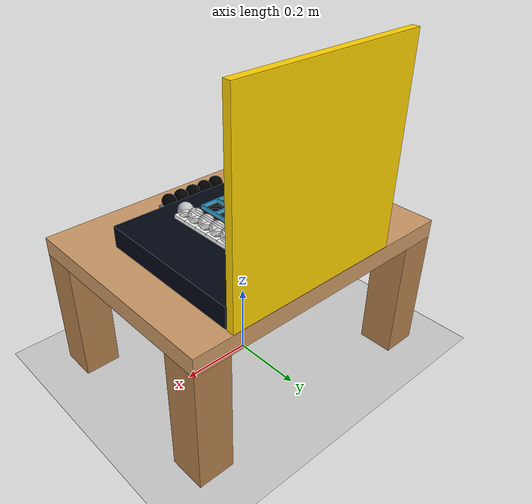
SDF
<sdf version="1.10">
 <world name="WORKINGPROTO">
  <physics name="1ms" type="ignored">
   <max_step_size>0.001</max_step_size>
   <real_time_factor>1</real_time_factor>
   <real_time_update_rate>1000</real_time_update_rate>
  </physics>
  <plugin name="gz::sim::systems::Physics" filename="gz-sim-physics-system"/>
  <plugin name="gz::sim::systems::UserCommands" filename="gz-sim-user-commands-system"/>
  <plugin name="gz::sim::systems::SceneBroadcaster" filename="gz-sim-scene-broadcaster-system"/>
  <gravity>0 0 -9.8000000000000007</gravity>
  <magnetic_field>5.5644999999999998e-06 2.2875799999999999e-05 -4.2388400000000002e-05</magnetic_field>
  <atmosphere type="adiabatic"/>
  <scene>
   <ambient>0.400000006 0.400000006 0.400000006 1</ambient>
   <background>0.699999988 0.699999988 0.699999988 1</background>
   <shadows>true</shadows>
  </scene>
  <model name="ground_plane">
   <static>true</static>
   <link name="link">
    <collision name="collision">
     <geometry><plane><normal>0 0 1</normal><size>100 100</size></plane></geometry>
     <surface>
      <contact><collide_bitmask>65535</collide_bitmask><ode><mu>100</mu><mu2>50</mu2></ode></contact>
      <friction><ode><mu>100</mu><mu2>50</mu2></ode></friction>
     </surface>
    </collision>
    <visual name="visual">
     <cast_shadows>false</cast_shadows>
     <geometry><plane><normal>0 0 1</normal><size>100 100</size></plane></geometry>
     <material>
      <ambient>0.800000012 0.800000012 0.800000012 1</ambient>
      <diffuse>0.800000012 0.800000012 0.800000012 1</diffuse>
      <specular>0 0 0 1</specular>
     </material>
    </visual>
    <inertial>
     <mass>1</mass>
     <inertia><ixx>1</ixx><ixy>0</ixy><ixz>0</ixz><iyy>1</iyy><iyz>0</iyz><izz>1</izz></inertia>
    </inertial>
   </link>
  </model>
  <model name="study_table">
   <static>true</static>
   <link name="table_link">
    <inertial>
     <mass>50</mass>
     <inertia><ixx>10</ixx><iyy>8</iyy><izz>6</izz><ixy>0</ixy><ixz>0</ixz><iyz>0</iyz></inertia>
    </inertial>
    <visual name="table_top">
     <pose>0 0 0.375 0 0 0</pose>
     <geometry><box><size>0.80000000000000004 0.59999999999999998 0.050000000000000003</size></box></geometry>
     <material>
      <ambient>0.800000012 0.600000024 0.400000006 1</ambient>
      <diffuse>0.800000012 0.600000024 0.400000006 1</diffuse>
     </material>
    </visual>
    <visual name="table_leg1">
     <pose>0.34999999999999998 0.25 0.17499999999999999 0 0 0</pose>
     <geometry><box><size>0.10000000000000001 0.10000000000000001 0.34999999999999998</size></box></geometry>
     <material>
      <ambient>0.699999988 0.5 0.300000012 1</ambient>
      <diffuse>0.699999988 0.5 0.300000012 1</diffuse>
     </material>
    </visual>
    <visual name="table_leg2">
     <pose>-0.34999999999999998 0.25 0.17499999999999999 0 0 0</pose>
     <geometry><box><size>0.10000000000000001 0.10000000000000001 0.34999999999999998</size></box></geometry>
     <material>
      <ambient>0.699999988 0.5 0.300000012 1</ambient>
      <diffuse>0.699999988 0.5 0.300000012 1</diffuse>
     </material>
    </visual>
    <visual name="table_leg3">
     <pose>0.34999999999999998 -0.25 0.17499999999999999 0 0 0</pose>
     <geometry><box><size>0.10000000000000001 0.10000000000000001 0.34999999999999998</size></box></geometry>
     <material>
      <ambient>0.699999988 0.5 0.300000012 1</ambient>
      <diffuse>0.699999988 0.5 0.300000012 1</diffuse>
     </material>
    </visual>
    <visual name="table_leg4">
     <pose>-0.34999999999999998 -0.25 0.17499999999999999 0 0 0</pose>
     <geometry><box><size>0.10000000000000001 0.10000000000000001 0.34999999999999998</size></box></geometry>
     <material>
      <ambient>0.699999988 0.5 0.300000012 1</ambient>
      <diffuse>0.699999988 0.5 0.300000012 1</diffuse>
     </material>
    </visual>
    <collision name="table_collision">
     <pose>0 0 0.375 0 0 0</pose>
     <geometry><box><size>0.80000000000000004 0.59999999999999998 0.050000000000000003</size></box></geometry>
    </collision>
   </link>
  </model>
  <model name="guard_rail">
   <static>true</static>
   <pose>-0.08814220130443573 -0.083396650850772858 0.43519699573516846 0 0 0</pose>
   <link name="rail_link">
    <inertial>
     <mass>10</mass>
     <inertia><ixx>1</ixx><iyy>1</iyy><izz>1</izz><ixy>0</ixy><ixz>0</ixz><iyz>0</iyz></inertia>
    </inertial>
    <visual name="rail_visual">
     <geometry>
      <mesh>
       <scale>0.001 0.001 0.001</scale>
       <uri>file:///home/sukritchopra/ros2_ws/src/jetrover_description/models/jetrover/meshes_1/EXTERNAL_MESHES/GUARD_RAILS6.stl</uri>
      </mesh>
     </geometry>
     <material>
      <ambient>0.235294119 0.70588237 0.90196079 1</ambient>
      <diffuse>0.235294119 0.70588237 0.90196079 1</diffuse>
     </material>
    </visual>
    <collision name="rail_collision">
     <geometry>
      <mesh>
       <scale>0.001 0.001 0.001</scale>
       <uri>file:///home/sukritchopra/ros2_ws/src/jetrover_description/models/jetrover/meshes_1/EXTERNAL_MESHES/GUARD_RAILS6.stl</uri>
      </mesh>
     </geometry>
    </collision>
   </link>
  </model>
  <model name="wall">
   <static>true</static>
   <pose>0.044432800263166428 0.2894740104675293 0.81117349863052368 0 0 0</pose>
   <link name="wall_link">
    <inertial>
     <mass>20000000</mass>
     <inertia>
      <ixx>1.6699999999999999</ixx>
      <iyy>2.6699999999999999</iyy>
      <izz>1.0700000000000001</izz>
      <ixy>0</ixy>
      <ixz>0</ixz>
      <iyz>0</iyz>
     </inertia>
    </inertial>
    <visual name="wall_base">
     <pose>0 0 -0.14999999999999999 0 0 0</pose>
     <geometry><box><size>0.49999999999999978 0.020000000000000004 0.5199999999999998</size></box></geometry>
     <material><ambient>1 0.824000001 0 1</ambient><diffuse>1 0.824000001 0 1</diffuse></material>
    </visual>
    <collision name="wall_base_collision">
     <pose>0 0 -0.14999999999999999 0 0 0</pose>
     <geometry><box><size>0.49999999999999978 0.020000000000000004 0.5199999999999998</size></box></geometry>
    </collision>
   </link>
  </model>
  <model name="enclosure_floor">
   <static>true</static>
   <pose>0.19129636883735654 0.064957223832607283 0.42550611495971669 1.5700000129604901 -7.7423206226386561e-06 1.5605700097926098</pose>
   <link name="enclosure_floor_link">
    <inertial>
     <mass>20000000</mass>
     <inertia>
      <ixx>1.6699999999999999</ixx>
      <iyy>2.6699999999999999</iyy>
      <izz>1.0700000000000001</izz>
      <ixy>0</ixy>
      <ixz>0</ixz>
      <iyz>0</iyz>
     </inertia>
    </inertial>
    <visual name="enclosure_floor_base">
     <pose>0 0 -0.14999999999999999 0 0 0</pose>
     <geometry><box><size>0.41999999999999998 0.065000000000000002 0.5</size></box></geometry>
     <material>
      <ambient>0 0.00400000019 0.0149999997 1</ambient>
      <diffuse>0.00400000019 0.0199999996 0.0700000003 1</diffuse>
     </material>
    </visual>
    <collision name="enclosure_floor_base_collision">
     <pose>0 0 -0.14999999999999999 0 0 0</pose>
     <geometry><box><size>0.41999999999999998 0.065000000000000002 0.5</size></box></geometry>
    </collision>
   </link>
  </model>
  <model name="tictactoe_game">
   <static>true</static>
   <pose>-0.078679516911506653 -0.071379296481609344 0.44987401366233826 8.8383398999775122e-08 9.0853602388062954e-07 -0.0004004650162100489</pose>
   <link name="board">
    <inertial>
     <mass>2</mass>
     <inertia>
      <ixx>0.10000000000000001</ixx>
      <iyy>0.10000000000000001</iyy>
      <izz>0.10000000000000001</izz>
      <ixy>0</ixy>
      <ixz>0</ixz>
      <iyz>0</iyz>
     </inertia>
    </inertial>
    <visual name="board_visual">
     <geometry>
      <mesh>
       <scale>0.001 0.001 0.001</scale>
       <uri>file:///home/sukritchopra/ros2_ws/src/jetrover_description/models/jetrover/meshes_1/EXTERNAL_MESHES/tictactoe_board3.stl</uri>
      </mesh>
     </geometry>
     <material>
      <ambient>0.0500000007 0.0500000007 0.0500000007 1</ambient>
      <diffuse>0.0500000007 0.0500000007 0.0500000007 1</diffuse>
     </material>
    </visual>
    <collision name="board_collision">
     <geometry>
      <mesh>
       <scale>0.001 0.001 0.001</scale>
       <uri>file:///home/sukritchopra/ros2_ws/src/jetrover_description/models/jetrover/meshes_1/EXTERNAL_MESHES/tictactoe_board3.stl</uri>
      </mesh>
     </geometry>
    </collision>
   </link>
  </model>
  <model name="o_piece_1">
   <static>false</static>
   <pose>0.085922427286968403 -0.19898903581762434 0.43195286992174503 -1.8337843268030118 0.35810408195431553 0.79344096331594527</pose>
   <link name="o_link">
    <inertial>
     <mass>0.0027000000000000001</mass>
     <inertia>
      <ixx>1.0000000000000001e-05</ixx>
      <iyy>1.0000000000000001e-05</iyy>
      <izz>1.0000000000000001e-05</izz>
      <ixy>0</ixy>
      <ixz>0</ixz>
      <iyz>0</iyz>
     </inertia>
    </inertial>
    <visual name="o_visual">
     <geometry><sphere><radius>0.02</radius></sphere></geometry>
     <material><ambient>0 0 0 1</ambient><diffuse>0 0 0 1</diffuse></material>
    </visual>
    <collision name="o_collision"><geometry><sphere><radius>0.02</radius></sphere></geometry></collision>
   </link>
  </model>
  <model name="o_piece_2">
   <static>false</static>
   <pose>0.005923516400853185 -0.19857281593479062 0.43195285446754733 -1.1565946605721613 1.5254311978203543 1.0062701691461311</pose>
   <link name="o_link">
    <inertial>
     <mass>0.0027000000000000001</mass>
     <inertia>
      <ixx>1.0000000000000001e-05</ixx>
      <iyy>1.0000000000000001e-05</iyy>
      <izz>1.0000000000000001e-05</izz>
      <ixy>0</ixy>
      <ixz>0</ixz>
      <iyz>0</iyz>
     </inertia>
    </inertial>
    <visual name="o_visual">
     <geometry><sphere><radius>0.02</radius></sphere></geometry>
     <material><ambient>0 0 0 1</ambient><diffuse>0 0 0 1</diffuse></material>
    </visual>
    <collision name="o_collision"><geometry><sphere><radius>0.02</radius></sphere></geometry></collision>
   </link>
  </model>
  <model name="o_piece_3">
   <static>false</static>
   <pose>-0.074075405402659875 -0.19815660350751288 0.43195285607682621 -1.0420045667514066 -0.14606115901628433 3.0441487576330934</pose>
   <link name="o_link">
    <inertial>
     <mass>0.0027000000000000001</mass>
     <inertia>
      <ixx>1.0000000000000001e-05</ixx>
      <iyy>1.0000000000000001e-05</iyy>
      <izz>1.0000000000000001e-05</izz>
      <ixy>0</ixy>
      <ixz>0</ixz>
      <iyz>0</iyz>
     </inertia>
    </inertial>
    <visual name="o_visual">
     <geometry><sphere><radius>0.02</radius></sphere></geometry>
     <material><ambient>0 0 0 1</ambient><diffuse>0 0 0 1</diffuse></material>
    </visual>
    <collision name="o_collision"><geometry><sphere><radius>0.02</radius></sphere></geometry></collision>
   </link>
  </model>
  <model name="o_piece_4">
   <static>false</static>
   <pose>0.045922969769135014 -0.1987809285597926 0.43195286984880421 2.4437912362530279 0.013397183306945542 2.2860722619589939</pose>
   <link name="o_link">
    <inertial>
     <mass>0.0027000000000000001</mass>
     <inertia>
      <ixx>1.0000000000000001e-05</ixx>
      <iyy>1.0000000000000001e-05</iyy>
      <izz>1.0000000000000001e-05</izz>
      <ixy>0</ixy>
      <ixz>0</ixz>
      <iyz>0</iyz>
     </inertia>
    </inertial>
    <visual name="o_visual">
     <geometry><sphere><radius>0.02</radius></sphere></geometry>
     <material><ambient>0 0 0 1</ambient><diffuse>0 0 0 1</diffuse></material>
    </visual>
    <collision name="o_collision"><geometry><sphere><radius>0.02</radius></sphere></geometry></collision>
   </link>
  </model>
  <model name="o_piece_5">
   <static>false</static>
   <pose>-0.034075879781253066 -0.19836465989416874 0.43195287136689103 -2.3660480947829123 -0.95960730072912281 -1.9011069770164897</pose>
   <link name="o_link">
    <inertial>
     <mass>0.0027000000000000001</mass>
     <inertia>
      <ixx>1.0000000000000001e-05</ixx>
      <iyy>1.0000000000000001e-05</iyy>
      <izz>1.0000000000000001e-05</izz>
      <ixy>0</ixy>
      <ixz>0</ixz>
      <iyz>0</iyz>
     </inertia>
    </inertial>
    <visual name="o_visual">
     <geometry><sphere><radius>0.02</radius></sphere></geometry>
     <material><ambient>0 0 0 1</ambient><diffuse>0 0 0 1</diffuse></material>
    </visual>
    <collision name="o_collision"><geometry><sphere><radius>0.02</radius></sphere></geometry></collision>
   </link>
  </model>
  <model name="robot_box">
   <static>true</static>
   <pose>0.048892199999999997 0.226767 0.69010899999999997 1.5400000000000003 0 0</pose>
   <link name="box_link">
    <inertial>
     <mass>5</mass>
     <inertia>
      <ixx>0.10000000000000001</ixx>
      <iyy>0.10000000000000001</iyy>
      <izz>0.10000000000000001</izz>
      <ixy>0</ixy>
      <ixz>0</ixz>
      <iyz>0</iyz>
     </inertia>
    </inertial>
    <visual name="front_wall">
     <pose>0.065000000000000002 0 0 0 0 0</pose>
     <geometry><box><size>0.01 0.13 0.105</size></box></geometry>
     <material>
      <ambient>0.800000012 0.800000012 3.00000003e-09 1</ambient>
      <diffuse>0.800000012 0.800000012 3.00000003e-09 1</diffuse>
     </material>
    </visual>
    <collision name="front_wall_collision">
     <pose>0.065000000000000002 0 0 0 0 0</pose>
     <geometry><box><size>0.01 0.13 0.105</size></box></geometry>
    </collision>
    <visual name="back_wall">
     <pose>-0.065000000000000002 0 0 0 0 0</pose>
     <geometry><box><size>0.01 0.13 0.105</size></box></geometry>
     <material>
      <ambient>0.800000012 0.800000012 3.00000003e-09 1</ambient>
      <diffuse>0.800000012 0.800000012 3.00000003e-09 1</diffuse>
     </material>
    </visual>
    <collision name="back_wall_collision">
     <pose>-0.065000000000000002 0 0 0 0 0</pose>
     <geometry><box><size>0.01 0.13 0.105</size></box></geometry>
    </collision>
    <visual name="left_wall">
     <pose>0 0.065000000000000002 0 0 0 0</pose>
     <geometry><box><size>0.13 0.01 0.105</size></box></geometry>
     <material>
      <ambient>0.800000012 0.800000072 3.00000003e-09 1</ambient>
      <diffuse>0.800000012 0.800000012 3.00000003e-09 1</diffuse>
     </material>
    </visual>
    <collision name="left_wall_collision">
     <pose>0 0.065000000000000002 0 0 0 0</pose>
     <geometry><box><size>0.13 0.01 0.105</size></box></geometry>
    </collision>
    <visual name="right_wall">
     <pose>0 -0.065000000000000002 0 0 0 0</pose>
     <geometry><box><size>0.13 0.01 0.105</size></box></geometry>
     <material>
      <ambient>0.800000012 0.800000012 3.00000003e-09 1</ambient>
      <diffuse>0.800000012 0.800000012 3.00000003e-09 1</diffuse>
     </material>
    </visual>
    <collision name="right_wall_collision">
     <pose>0 -0.065000000000000002 0 0 0 0</pose>
     <geometry><box><size>0.13 0.01 0.105</size></box></geometry>
    </collision>
   </link>
  </model>
  <model name="x_piece_1">
   <static>false</static>
   <pose>0.137557737735756 -0.015389288135910941 0.48468985579139523 -2.2834031626843618 0.41286145522518447 -3.0146566810042446</pose>
   <link name="x_link">
    <inertial>
     <mass>0.0027000000000000001</mass>
     <inertia>
      <ixx>1.0000000000000001e-05</ixx>
      <iyy>1.0000000000000001e-05</iyy>
      <izz>1.0000000000000001e-05</izz>
      <ixy>0</ixy>
      <ixz>0</ixz>
      <iyz>0</iyz>
     </inertia>
    </inertial>
    <visual name="x_visual">
     <geometry><sphere><radius>0.02</radius></sphere></geometry>
     <material><ambient>1 1 1 0.800000012</ambient><diffuse>1 1 1 0.800000012</diffuse></material>
    </visual>
    <collision name="x_collision"><geometry><sphere><radius>0.02</radius></sphere></geometry></collision>
   </link>
  </model>
  <model name="x_piece_2">
   <static>false</static>
   <pose>0.13752064467347239 0.064610705430581283 0.48468986457117141 -2.6546665956036355 1.299260214201658 2.9230636617550236</pose>
   <link name="x_link">
    <inertial>
     <mass>0.0027000000000000001</mass>
     <inertia>
      <ixx>1.0000000000000001e-05</ixx>
      <iyy>1.0000000000000001e-05</iyy>
      <izz>1.0000000000000001e-05</izz>
      <ixy>0</ixy>
      <ixz>0</ixz>
      <iyz>0</iyz>
     </inertia>
    </inertial>
    <visual name="x_visual">
     <geometry><sphere><radius>0.02</radius></sphere></geometry>
     <material><ambient>1 1 1 0.800000012</ambient><diffuse>1 1 1 0.800000012</diffuse></material>
    </visual>
    <collision name="x_collision"><geometry><sphere><radius>0.02</radius></sphere></geometry></collision>
   </link>
  </model>
  <model name="x_piece_3">
   <static>false</static>
   <pose>0.13750210065221521 0.104610700168355 0.48468986593002911 -2.6243664982302537 0.5524038214715431 -2.7103464875015217</pose>
   <link name="x_link">
    <inertial>
     <mass>0.0027000000000000001</mass>
     <inertia>
      <ixx>1.0000000000000001e-05</ixx>
      <iyy>1.0000000000000001e-05</iyy>
      <izz>1.0000000000000001e-05</izz>
      <ixy>0</ixy>
      <ixz>0</ixz>
      <iyz>0</iyz>
     </inertia>
    </inertial>
    <visual name="x_visual">
     <geometry><sphere><radius>0.02</radius></sphere></geometry>
     <material><ambient>1 1 1 0.800000012</ambient><diffuse>1 1 1 0.800000012</diffuse></material>
    </visual>
    <collision name="x_collision"><geometry><sphere><radius>0.02</radius></sphere></geometry></collision>
   </link>
  </model>
  <model name="x_piece_4">
   <static>false</static>
   <pose>0.13757627834991515 -0.055389277197441779 0.48468986933461944 -2.8736376405702275 0.33465803996651661 1.1494140873438332</pose>
   <link name="x_link">
    <inertial>
     <mass>0.0027000000000000001</mass>
     <inertia>
      <ixx>1.0000000000000001e-05</ixx>
      <iyy>1.0000000000000001e-05</iyy>
      <izz>1.0000000000000001e-05</izz>
      <ixy>0</ixy>
      <ixz>0</ixz>
      <iyz>0</iyz>
     </inertia>
    </inertial>
    <visual name="x_visual">
     <geometry><sphere><radius>0.02</radius></sphere></geometry>
     <material><ambient>1 1 1 0.800000012</ambient><diffuse>1 1 1 0.800000012</diffuse></material>
    </visual>
    <collision name="x_collision"><geometry><sphere><radius>0.02</radius></sphere></geometry></collision>
   </link>
  </model>
  <model name="x_piece_5">
   <static>false</static>
   <pose>0.13753918742769719 0.024610710842064988 0.48468986655737545 2.963562661121141 0.73381877244841742 2.820449644216664</pose>
   <link name="x_link">
    <inertial>
     <mass>0.0027000000000000001</mass>
     <inertia>
      <ixx>1.0000000000000001e-05</ixx>
      <iyy>1.0000000000000001e-05</iyy>
      <izz>1.0000000000000001e-05</izz>
      <ixy>0</ixy>
      <ixz>0</ixz>
      <iyz>0</iyz>
     </inertia>
    </inertial>
    <visual name="x_visual">
     <geometry><sphere><radius>0.02</radius></sphere></geometry>
     <material><ambient>1 1 1 0.800000012</ambient><diffuse>1 1 1 0.800000012</diffuse></material>
    </visual>
    <collision name="x_collision"><geometry><sphere><radius>0.02</radius></sphere></geometry></collision>
   </link>
  </model>
  <model name="ball_store_grey">
   <static>true</static>
   <pose>0.10602620244026184 -0.17909336090087891 0.40764299035072327 0 0 3.1363899998849982</pose>
   <link name="ball_store_link">
    <inertial>
     <mass>1</mass>
     <inertia>
      <ixx>0.10000000000000001</ixx>
      <iyy>0.10000000000000001</iyy>
      <izz>0.10000000000000001</izz>
      <ixy>0</ixy>
      <ixz>0</ixz>
      <iyz>0</iyz>
     </inertia>
    </inertial>
    <visual name="ball_store_visual">
     <geometry>
      <mesh>
       <scale>0.001 0.001 0.001</scale>
       <uri>file:///home/sukritchopra/ros2_ws/src/jetrover_description/models/jetrover/meshes_1/EXTERNAL_MESHES/BALLSTORE2.stl</uri>
      </mesh>
     </geometry>
     <material><ambient>0.5 0.5 0.5 1</ambient><diffuse>0.5 0.5 0.5 1</diffuse></material>
    </visual>
    <collision name="ball_store_collision">
     <geometry>
      <mesh>
       <scale>0.001 0.001 0.001</scale>
       <uri>file:///home/sukritchopra/ros2_ws/src/jetrover_description/models/jetrover/meshes_1/EXTERNAL_MESHES/BALLSTORE2.stl</uri>
      </mesh>
     </geometry>
    </collision>
   </link>
  </model>
  <model name="ball_store_white">
   <static>true</static>
   <pose>0.15758554637432098 -0.075379997491836548 0.46037998795509338 0 0 1.5712599421281468</pose>
   <link name="ball_store_link">
    <inertial>
     <mass>1</mass>
     <inertia>
      <ixx>0.10000000000000001</ixx>
      <iyy>0.10000000000000001</iyy>
      <izz>0.10000000000000001</izz>
      <ixy>0</ixy>
      <ixz>0</ixz>
      <iyz>0</iyz>
     </inertia>
    </inertial>
    <visual name="ball_store_visual">
     <geometry>
      <mesh>
       <scale>0.001 0.001 0.001</scale>
       <uri>file:///home/sukritchopra/ros2_ws/src/jetrover_description/models/jetrover/meshes_1/EXTERNAL_MESHES/BALLSTORE2.stl</uri>
      </mesh>
     </geometry>
     <material><ambient>1 1 1 1</ambient><diffuse>1 1 1 1</diffuse></material>
    </visual>
    <collision name="ball_store_collision">
     <geometry>
      <mesh>
       <scale>0.001 0.001 0.001</scale>
       <uri>file:///home/sukritchopra/ros2_ws/src/jetrover_description/models/jetrover/meshes_1/EXTERNAL_MESHES/BALLSTORE2.stl</uri>
      </mesh>
     </geometry>
    </collision>
   </link>
  </model>
  <light name="sun" type="directional">
   <pose>0 0 10 0 0 0</pose>
   <intensity>1</intensity>
   <direction>-0.5 0.10000000000000001 -0.90000000000000002</direction>
   <diffuse>0.800000012 0.800000012 0.800000012 1</diffuse>
   <specular>0.200000003 0.200000003 0.200000003 1</specular>
   <attenuation>
    <range>1000</range>
    <linear>0.0099999997764825821</linear>
    <constant>0.89999997615814209</constant>
    <quadratic>0.0010000000474974513</quadratic>
   </attenuation>
   <spot><inner_angle>0</inner_angle><outer_angle>0</outer_angle><falloff>0</falloff></spot>
  </light>
 </world>
</sdf>
